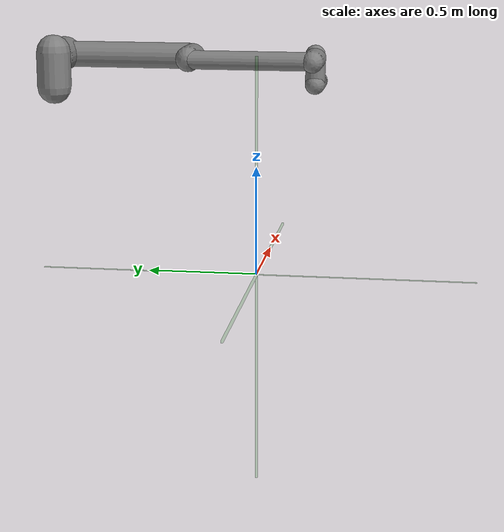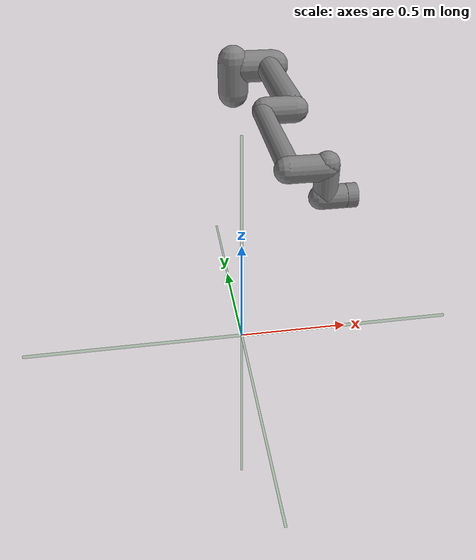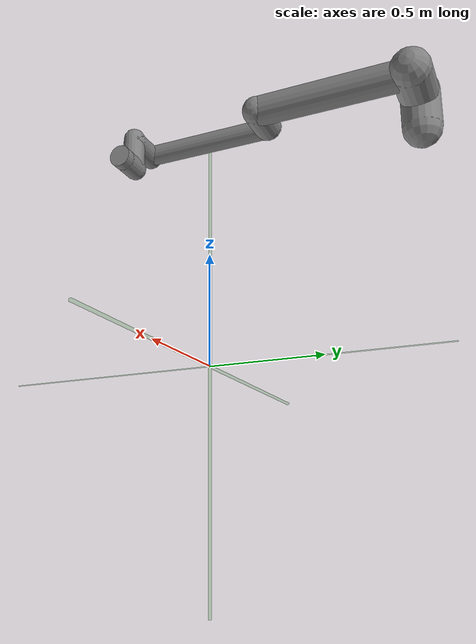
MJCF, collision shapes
<mujoco model="ur10e">

  <option integrator="implicitfast"/>

  <default>
    <default class="ur10e">
      <material specular="0.5" shininess="0.25"/>
      <joint axis="0 1 0" range="-6.28319 6.28319" armature="0.1"/>
      <position ctrlrange="-6.2831 6.2831"/>
      <general biastype="affine" ctrlrange="-6.2831 6.2831" gainprm="5000" biasprm="0 -5000 -500"/>
      <default class="size4">
        <joint damping="10"/>
        <general forcerange="-330 330"/>
      </default>
      <default class="size3">
        <joint damping="5"/>
        <general forcerange="-150 150"/>
        <default class="size3_limited">
          <joint range="-3.1415 3.1415"/>
          <general ctrlrange="-3.1415 3.1415"/>
        </default>
      </default>
      <default class="size2">
        <joint damping="2"/>
        <general forcerange="-56 56"/>
      </default>
      <default class="visual">
        <geom type="mesh" contype="0" conaffinity="0" group="2"/>
      </default>
      <default class="collision">
        <geom type="capsule" group="3"/>
        <default class="eef_collision">
          <geom type="cylinder"/>
        </default>
      </default>
      <site size="0.001" rgba="0.5 0.5 0.5 0.3" group="4"/>
    </default>
  </default>

  <asset>
    <material class="ur10e" name="black" rgba="0.033 0.033 0.033 1"/>
    <material class="ur10e" name="jointgray" rgba="0.278 0.278 0.278 1"/>
    <material class="ur10e" name="linkgray" rgba="0.82 0.82 0.82 1"/>
    <material class="ur10e" name="urblue" rgba="0.49 0.678 0.8 1"/>

    <mesh file="ur10e/base_0.obj" name="base_0"/>
    <mesh file="ur10e/base_1.obj" name="base_1"/>
    <mesh file="ur10e/shoulder_0.obj" name="shoulder_0"/>
    <mesh file="ur10e/shoulder_1.obj" name="shoulder_1"/>
    <mesh file="ur10e/shoulder_2.obj" name="shoulder_2"/>
    <mesh file="ur10e/upperarm_0.obj" name="upperarm_0"/>
    <mesh file="ur10e/upperarm_1.obj" name="upperarm_1"/>
    <mesh file="ur10e/upperarm_2.obj" name="upperarm_2"/>
    <mesh file="ur10e/upperarm_3.obj" name="upperarm_3"/>
    <mesh file="ur10e/forearm_0.obj" name="forearm_0"/>
    <mesh file="ur10e/forearm_1.obj" name="forearm_1"/>
    <mesh file="ur10e/forearm_2.obj" name="forearm_2"/>
    <mesh file="ur10e/forearm_3.obj" name="forearm_3"/>
    <mesh file="ur10e/wrist1_0.obj" name="wrist1_0"/>
    <mesh file="ur10e/wrist1_1.obj" name="wrist1_1"/>
    <mesh file="ur10e/wrist1_2.obj" name="wrist1_2"/>
    <mesh file="ur10e/wrist2_0.obj" name="wrist2_0"/>
    <mesh file="ur10e/wrist2_1.obj" name="wrist2_1"/>
    <mesh file="ur10e/wrist2_2.obj" name="wrist2_2"/>
    <mesh file="ur10e/wrist3.obj" name="wrist3"/>
  </asset>

  <worldbody>
    <body mocap="true" name="robot0:mocap" pos="0 0 0">
      <geom conaffinity="0" contype="0" pos="0 0 0" rgba="0 0.5 0 0.7" size="0.005 0.005 0.005" type="box"></geom>
      <geom conaffinity="0" contype="0" pos="0 0 0" rgba="0 0.5 0 0.1" size="1 0.005 0.005" type="box"></geom>
      <geom conaffinity="0" contype="0" pos="0 0 0" rgba="0 0.5 0 0.1" size="0.005 1 0.001" type="box"></geom>
      <geom conaffinity="0" contype="0" pos="0 0 0" rgba="0 0.5 0 0.1" size="0.005 0.005 1" type="box"></geom>
    </body>
    <light name="spotlight" mode="targetbodycom" target="wrist_2_link" pos="0 -1 2"/>
    <body name="base" pos="0.100 0.950 0.780" quat="-0.707 0.000 0.000 0.707" childclass="ur10e">
      <inertial mass="4.0" pos="0 0 0" diaginertia="0.0061063308908 0.0061063308908 0.01125"/>
      <geom mesh="base_0" material="black" class="visual"/>
      <geom mesh="base_1" material="jointgray" class="visual"/>
      <body name="shoulder_link" pos="0 0 0.181">
        <inertial pos="0 0 0" mass="7.778" diaginertia="0.0314743 0.0314743 0.0218756"/>
        <joint name="shoulder_pan_joint" class="size4" axis="0 0 1"/>
        <geom mesh="shoulder_0" material="urblue" class="visual"/>
        <geom mesh="shoulder_1" material="black" class="visual"/>
        <geom mesh="shoulder_2" material="jointgray" class="visual"/>
        <geom class="collision" size="0.078 0.08" pos="0 0 -0.05"/>
        <body name="upper_arm_link" pos="0 0.176 0" quat="1 0 1 0">
          <inertial pos="0 0 0.3065" mass="12.93" diaginertia="0.423074 0.423074 0.0363656"/>
          <joint name="shoulder_lift_joint" class="size4"/>
          <geom mesh="upperarm_0" material="black" class="visual"/>
          <geom mesh="upperarm_1" material="jointgray" class="visual"/>
          <geom mesh="upperarm_2" material="urblue" class="visual"/>
          <geom mesh="upperarm_3" material="linkgray" class="visual"/>
          <geom class="collision" pos="0 -0.05 0" quat="1 1 0 0" size="0.078 0.08"/>
          <geom class="collision" size="0.06 0.3" pos="0 0 0.3"/>
          <body name="forearm_link" pos="0 -0.137 0.613">
            <inertial pos="0 0 0.2855" mass="3.87" diaginertia="0.11059 0.11059 0.0108844"/>
            <joint name="elbow_joint" class="size3_limited"/>
            <geom mesh="forearm_0" material="urblue" class="visual"/>
            <geom mesh="forearm_1" material="black" class="visual"/>
            <geom mesh="forearm_2" material="jointgray" class="visual"/>
            <geom mesh="forearm_3" material="linkgray" class="visual"/>
            <geom class="collision" pos="0 0.08 0" quat="1 1 0 0" size="0.058 0.065"/>
            <geom class="collision" size="0.043 0.28" pos="0 0 0.29"/>
            <body name="wrist_1_link" pos="0 0 0.571" quat="1 0 1 0">
              <inertial pos="0 0.135 0" quat="0.5 0.5 -0.5 0.5" mass="1.96"
                diaginertia="0.0055125 0.00510825 0.00510825"/>
              <joint name="wrist_1_joint" class="size2"/>
              <geom mesh="wrist1_0" material="black" class="visual"/>
              <geom mesh="wrist1_1" material="urblue" class="visual"/>
              <geom mesh="wrist1_2" material="jointgray" class="visual"/>
              <geom class="collision" pos="0 0.06 0" quat="1 1 0 0" size="0.05 0.07"/>
              <body name="wrist_2_link" pos="0 0.135 0">
                <inertial pos="0 0 0.12" quat="0.5 0.5 -0.5 0.5" mass="1.96"
                  diaginertia="0.0055125 0.00510825 0.00510825"/>
                <joint name="wrist_2_joint" axis="0 0 1" class="size2"/>
                <geom mesh="wrist2_0" material="black" class="visual"/>
                <geom mesh="wrist2_1" material="urblue" class="visual"/>
                <geom mesh="wrist2_2" material="jointgray" class="visual"/>
                <geom class="collision" size="0.046 0.065" pos="0 0 0.05"/>
                <geom class="collision" pos="0 0.028 0.12" quat="1 1 0 0" size="0.046 0.043"/>
                <body name="wrist_3_link" pos="0 0 0.12">
                  <inertial pos="0 0.092 0" quat="0 1 -1 0" mass="0.202"
                    diaginertia="0.000204525 0.000144346 0.000144346"/>
                  <joint name="wrist_3_joint" class="size2"/>
                  <geom material="linkgray" mesh="wrist3" class="visual"/>
                  <geom class="eef_collision" pos="0 0.097 0" quat="1 1 0 0" size="0.046 0.02"/>
                  <site name="attachment_site" pos="0 0.1 0" quat="-1 1 0 0"/>
                </body>
              </body>
            </body>
          </body>
        </body>
      </body>
    </body>
  </worldbody>

  <actuator>
    <general class="size4" name="shoulder_pan" joint="shoulder_pan_joint"/>
    <general class="size4" name="shoulder_lift" joint="shoulder_lift_joint"/>
    <general class="size3_limited" name="elbow" joint="elbow_joint"/>
    <general class="size2" name="wrist_1" joint="wrist_1_joint"/>
    <general class="size2" name="wrist_2" joint="wrist_2_joint"/>
    <general class="size2" name="wrist_3" joint="wrist_3_joint"/>
  </actuator>

</mujoco>
